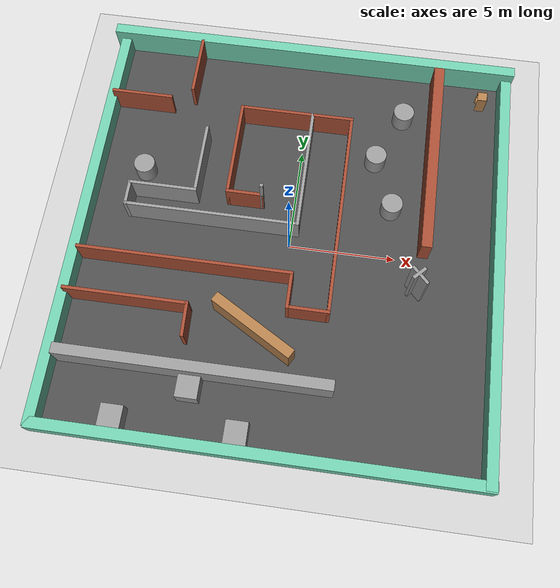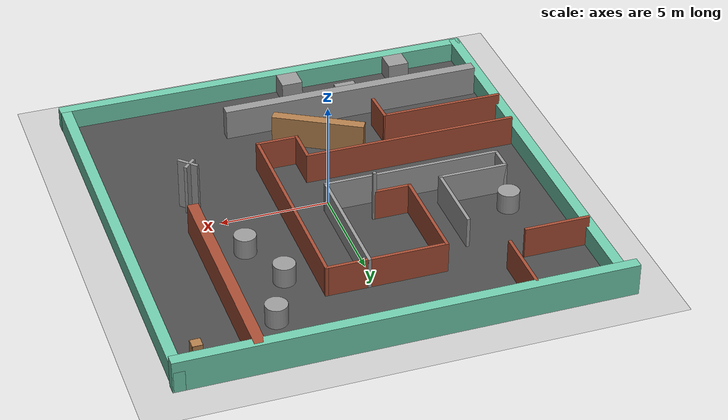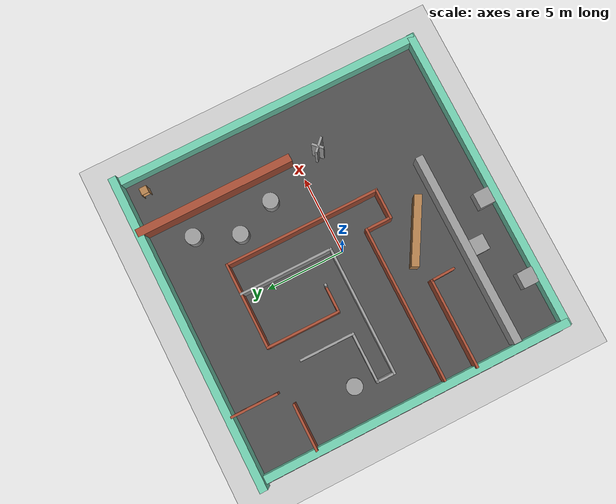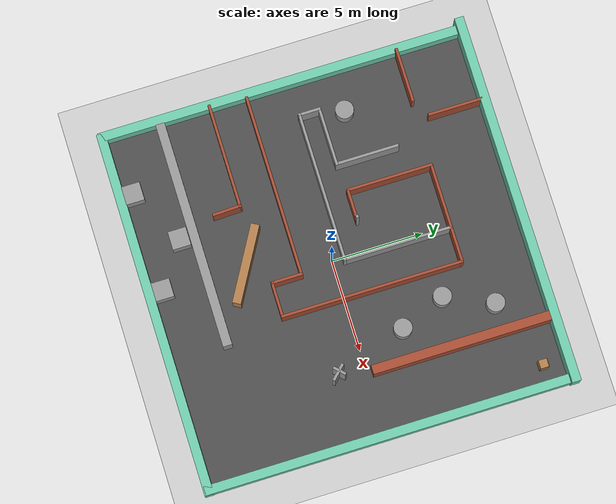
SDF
<sdf version="1.6">
 <world name="default">
  <light name="sun" type="directional">
   <pose>0 0 10 0 -0 0</pose>
   <diffuse>0.8 0.8 0.8 1</diffuse>
   <specular>0.1 0.1 0.1 1</specular>
   <attenuation>
    <range>1000</range>
    <constant>0.9</constant>
    <linear>0.01</linear>
    <quadratic>0.001</quadratic>
   </attenuation>
   <direction>-0.5 0.5 -1</direction>
  </light>
  <model name="ground_plane">
   <static>1</static>
   <link name="link">
    <collision name="collision">
     <geometry><plane><normal>0 0 1</normal><size>100 100</size></plane></geometry>
     <surface><friction><ode><mu>100</mu><mu2>50</mu2></ode></friction></surface>
    </collision>
    <visual name="visual">
     <cast_shadows>0</cast_shadows>
     <geometry><plane><normal>0 0 1</normal><size>100 100</size></plane></geometry>
     <material>
      <script><uri>file://media/materials/scripts/gazebo.material</uri><name>Gazebo/Grey</name></script>
     </material>
    </visual>
   </link>
  </model>
  <gravity>0 0 -9.8</gravity>
  <magnetic_field>6e-06 2.3e-05 -4.2e-05</magnetic_field>
  <atmosphere type="adiabatic"/>
  <physics name="default_physics" default="0" type="ode">
   <max_step_size>0.001</max_step_size>
   <real_time_factor>1</real_time_factor>
   <real_time_update_rate>1000</real_time_update_rate>
  </physics>
  <scene><ambient>0.4 0.4 0.4 1</ambient><background>0.7 0.7 0.7 1</background><shadows>1</shadows></scene>
  <spherical_coordinates>
   <surface_model>EARTH_WGS84</surface_model>
   <latitude_deg>0</latitude_deg>
   <longitude_deg>0</longitude_deg>
   <elevation>0</elevation>
   <heading_deg>0</heading_deg>
  </spherical_coordinates>
  <model name="practice.world">
   <pose>-0.153381 0.253657 0 0 -0 0</pose>
   <link name="Wall_0">
    <collision name="Wall_0_Collision">
     <geometry><box><size>20 0.5 1</size></box></geometry>
     <pose>0 0 0.5 0 -0 0</pose>
    </collision>
    <visual name="Wall_0_Visual">
     <pose>0 0 0.5 0 -0 0</pose>
     <geometry><box><size>20 0.5 1</size></box></geometry>
     <material>
      <script><uri>file://media/materials/scripts/gazebo.material</uri><name>Gazebo/Grey</name></script>
      <ambient>0.435294 0.796078 0.67451 1</ambient>
     </material>
    </visual>
    <pose>0.141188 -9.99913 0 0 -0 3.14159</pose>
   </link>
   <link name="Wall_11">
    <collision name="Wall_11_Collision">
     <geometry><box><size>3 0.15 1.5</size></box></geometry>
     <pose>0 0 0.75 0 -0 0</pose>
    </collision>
    <visual name="Wall_11_Visual">
     <pose>0 0 0.75 0 -0 0</pose>
     <geometry><box><size>3 0.15 1.5</size></box></geometry>
     <material>
      <script><uri>file://media/materials/scripts/gazebo.material</uri><name>Gazebo/Bricks</name></script>
      <ambient>1 1 1 1</ambient>
     </material>
    </visual>
    <pose>-8.0535 6.31307 0 0 -0 0</pose>
   </link>
   <link name="Wall_2">
    <collision name="Wall_2_Collision">
     <geometry><box><size>20.4281 0.5 1</size></box></geometry>
     <pose>0 0 0.5 0 -0 0</pose>
    </collision>
    <visual name="Wall_2_Visual">
     <pose>0 0 0.5 0 -0 0</pose>
     <geometry><box><size>20.4281 0.5 1</size></box></geometry>
     <material>
      <script><uri>file://media/materials/scripts/gazebo.material</uri><name>Gazebo/Grey</name></script>
      <ambient>0.435294 0.796078 0.67451 1</ambient>
     </material>
    </visual>
    <pose>9.8715 0.035083 0 0 -0 1.5708</pose>
   </link>
   <link name="Wall_5">
    <collision name="Wall_5_Collision">
     <geometry><box><size>20.35 0.5 1</size></box></geometry>
     <pose>0 0 0.5 0 -0 0</pose>
    </collision>
    <visual name="Wall_5_Visual">
     <pose>0 0 0.5 0 -0 0</pose>
     <geometry><box><size>20.35 0.5 1</size></box></geometry>
     <material>
      <script><uri>file://media/materials/scripts/gazebo.material</uri><name>Gazebo/Grey</name></script>
      <ambient>0.435294 0.796078 0.67451 1</ambient>
     </material>
    </visual>
    <pose>-9.6685 -0.002927 0 0 -0 1.5708</pose>
   </link>
   <link name="Wall_7">
    <collision name="Wall_7_Collision">
     <geometry><box><size>20.35 0.5 1.5</size></box></geometry>
     <pose>0 0 0.75 0 -0 0</pose>
    </collision>
    <visual name="Wall_7_Visual">
     <pose>0 0 0.75 0 -0 0</pose>
     <geometry><box><size>20.35 0.5 1.5</size></box></geometry>
     <material>
      <script><uri>file://media/materials/scripts/gazebo.material</uri><name>Gazebo/Grey</name></script>
      <ambient>0.435294 0.796078 0.67451 1</ambient>
     </material>
    </visual>
    <pose>0 9.99909 0 0 -0 3.14159</pose>
   </link>
   <link name="Wall_9">
    <collision name="Wall_9_Collision">
     <geometry><box><size>3 0.15 1.5</size></box></geometry>
     <pose>0 0 0.75 0 -0 0</pose>
    </collision>
    <visual name="Wall_9_Visual">
     <pose>0 0 0.75 0 -0 0</pose>
     <geometry><box><size>3 0.15 1.5</size></box></geometry>
     <material>
      <script><uri>file://media/materials/scripts/gazebo.material</uri><name>Gazebo/Bricks</name></script>
      <ambient>1 1 1 1</ambient>
     </material>
    </visual>
    <pose>-5.62308 8.36069 0 0 -0 1.5708</pose>
   </link>
   <static>1</static>
  </model>
  <model name="jersey_barrier_0">
   <link name="link_0">
    <pose>5.33545 0.98242 0.5 0 -0 0</pose>
    <inertial>
     <mass>1</mass>
     <inertia><ixx>0.145833</ixx><ixy>0</ixy><ixz>0</ixz><iyy>0.145833</iyy><iyz>0</iyz><izz>0.125</izz></inertia>
    </inertial>
    <visual name="visual">
     <geometry><cylinder><radius>0.5</radius><length>1</length></cylinder></geometry>
     <material>
      <lighting>1</lighting>
      <script><uri>file://media/materials/scripts/gazebo.material</uri><name>Gazebo/Grey</name></script>
      <ambient>0.3 0.3 0.3 1</ambient>
      <diffuse>0.7 0.7 0.7 1</diffuse>
      <specular>0.01 0.01 0.01 1</specular>
      <emissive>0 0 0 1</emissive>
     </material>
    </visual>
    <collision name="collision">
     <geometry><cylinder><radius>0.5</radius><length>1</length></cylinder></geometry>
     <surface>
      <friction>
       <ode><mu>1</mu><mu2>1</mu2><fdir1>0 0 0</fdir1><slip1>0</slip1><slip2>0</slip2></ode>
       <torsional>
        <coefficient>1</coefficient>
        <patch_radius>0</patch_radius>
        <surface_radius>0</surface_radius>
        <use_patch_radius>1</use_patch_radius>
        <ode><slip>0</slip></ode>
       </torsional>
      </friction>
      <bounce><restitution_coefficient>0</restitution_coefficient><threshold>1e+06</threshold></bounce>
      <contact>
       <collide_without_contact>0</collide_without_contact>
       <collide_without_contact_bitmask>1</collide_without_contact_bitmask>
       <collide_bitmask>1</collide_bitmask>
       <ode>
        <soft_cfm>0</soft_cfm>
        <soft_erp>0.2</soft_erp>
        <kp>1e+13</kp>
        <kd>1</kd>
        <max_vel>0.01</max_vel>
        <min_depth>0</min_depth>
       </ode>
       <bullet>
        <split_impulse>1</split_impulse>
        <split_impulse_penetration_threshold>-0.01</split_impulse_penetration_threshold>
        <soft_cfm>0</soft_cfm>
        <soft_erp>0.2</soft_erp>
        <kp>1e+13</kp>
        <kd>1</kd>
       </bullet>
      </contact>
     </surface>
    </collision>
   </link>
   <static>1</static>
   <pose>-12.7853 2.01758 0 0 -0 0</pose>
  </model>
  <model name="Untitled">
   <pose>-3.323 -6.581 0 0 -0 0</pose>
   <link name="Wall_0">
    <collision name="Wall_0_Collision">
     <geometry><box><size>12.3501 0.5 1.5</size></box></geometry>
     <pose>0 0 0.75 0 -0 0</pose>
    </collision>
    <visual name="Wall_0_Visual">
     <pose>0 0 0.75 0 -0 0</pose>
     <geometry><box><size>12.3501 0.5 1.5</size></box></geometry>
     <material>
      <script><uri>file://media/materials/scripts/gazebo.material</uri><name>Gazebo/Grey</name></script>
      <ambient>1 1 1 1</ambient>
     </material>
    </visual>
    <pose>0 0 0 0 -0 3.14159</pose>
   </link>
   <static>1</static>
  </model>
  <model name="unit_box_0">
   <pose>-6.43541 -9.02069 0.5 0 -0 0</pose>
   <link name="link">
    <inertial>
     <mass>1</mass>
     <inertia>
      <ixx>0.166667</ixx>
      <ixy>0</ixy>
      <ixz>0</ixz>
      <iyy>0.166667</iyy>
      <iyz>0</iyz>
      <izz>0.166667</izz>
     </inertia>
    </inertial>
    <collision name="collision"><geometry><box><size>1 1 1</size></box></geometry></collision>
    <visual name="visual">
     <geometry><box><size>1 1 1</size></box></geometry>
     <material>
      <script><name>Gazebo/Grey</name><uri>file://media/materials/scripts/gazebo.material</uri></script>
     </material>
    </visual>
   </link>
  </model>
  <model name="unit_box_1">
   <pose>-3.40738 -7.36701 0.5 0 -0 0</pose>
   <link name="link">
    <inertial>
     <mass>1</mass>
     <inertia>
      <ixx>0.166667</ixx>
      <ixy>0</ixy>
      <ixz>0</ixz>
      <iyy>0.166667</iyy>
      <iyz>0</iyz>
      <izz>0.166667</izz>
     </inertia>
    </inertial>
    <collision name="collision"><geometry><box><size>1 1 1</size></box></geometry></collision>
    <visual name="visual">
     <geometry><box><size>1 1 1</size></box></geometry>
     <material>
      <script><name>Gazebo/Grey</name><uri>file://media/materials/scripts/gazebo.material</uri></script>
     </material>
    </visual>
   </link>
  </model>
  <model name="unit_box_2">
   <pose>-1.04488 -8.99604 0.5 0 -0 0</pose>
   <link name="link">
    <inertial>
     <mass>1</mass>
     <inertia>
      <ixx>0.166667</ixx>
      <ixy>0</ixy>
      <ixz>0</ixz>
      <iyy>0.166667</iyy>
      <iyz>0</iyz>
      <izz>0.166667</izz>
     </inertia>
    </inertial>
    <collision name="collision"><geometry><box><size>1 1 1</size></box></geometry></collision>
    <visual name="visual">
     <geometry><box><size>1 1 1</size></box></geometry>
     <material>
      <script><name>Gazebo/Grey</name><uri>file://media/materials/scripts/gazebo.material</uri></script>
     </material>
    </visual>
   </link>
  </model>
  <model name="Untitled_0">
   <pose>-1.584 2.50649 0 0 -0 0</pose>
   <link name="Wall_10">
    <collision name="Wall_10_Collision">
     <geometry><box><size>10 0.15 1.5</size></box></geometry>
     <pose>0 0 0.75 0 -0 0</pose>
    </collision>
    <visual name="Wall_10_Visual">
     <pose>0 0 0.75 0 -0 0</pose>
     <geometry><box><size>10 0.15 1.5</size></box></geometry>
     <material>
      <script><uri>file://media/materials/scripts/gazebo.material</uri><name>Gazebo/Bricks</name></script>
      <ambient>1 1 1 1</ambient>
     </material>
    </visual>
    <pose>3.806 -0.97649 0 0 -0 1.5708</pose>
   </link>
   <link name="Wall_11">
    <collision name="Wall_11_Collision">
     <geometry><box><size>5.54 0.15 1.5</size></box></geometry>
     <pose>0 0 0.75 0 -0 0</pose>
    </collision>
    <visual name="Wall_11_Visual">
     <pose>0 0 0.75 0 -0 0</pose>
     <geometry><box><size>5.54 0.15 1.5</size></box></geometry>
     <material>
      <script><uri>file://media/materials/scripts/gazebo.material</uri><name>Gazebo/Bricks</name></script>
      <ambient>1 1 1 1</ambient>
     </material>
    </visual>
    <pose>1.111 3.94851 0 0 -0 3.14159</pose>
   </link>
   <link name="Wall_12">
    <collision name="Wall_12_Collision">
     <geometry><box><size>4.75 0.15 1.5</size></box></geometry>
     <pose>0 0 0.75 0 -0 0</pose>
    </collision>
    <visual name="Wall_12_Visual">
     <pose>0 0 0.75 0 -0 0</pose>
     <geometry><box><size>4.75 0.15 1.5</size></box></geometry>
     <material>
      <script><uri>file://media/materials/scripts/gazebo.material</uri><name>Gazebo/Bricks</name></script>
      <ambient>1 1 1 1</ambient>
     </material>
    </visual>
    <pose>-1.584 1.64851 0 0 0 -1.5708</pose>
   </link>
   <link name="Wall_13">
    <collision name="Wall_13_Collision">
     <geometry><box><size>1.7902 0.15 1.5</size></box></geometry>
     <pose>0 0 0.75 0 -0 0</pose>
    </collision>
    <visual name="Wall_13_Visual">
     <pose>0 0 0.75 0 -0 0</pose>
     <geometry><box><size>1.7902 0.15 1.5</size></box></geometry>
     <material>
      <script><uri>file://media/materials/scripts/gazebo.material</uri><name>Gazebo/Bricks</name></script>
      <ambient>1 1 1 1</ambient>
     </material>
    </visual>
    <pose>-0.764 -0.65149 0 0 -0 0</pose>
   </link>
   <link name="Wall_14">
    <collision name="Wall_14_Collision">
     <geometry><box><size>0.16 0.15 2.5</size></box></geometry>
     <pose>0 0 1.25 0 -0 0</pose>
    </collision>
    <visual name="Wall_14_Visual">
     <pose>0 0 1.25 0 -0 0</pose>
     <geometry><box><size>0.16 0.15 2.5</size></box></geometry>
     <material>
      <script><uri>file://media/materials/scripts/gazebo.material</uri><name>Gazebo/Grey</name></script>
      <ambient>1 1 1 1</ambient>
     </material>
    </visual>
    <pose>0.0611 -0.65129 0 0 -0 0.039339</pose>
   </link>
   <link name="Wall_16">
    <collision name="Wall_16_Collision">
     <geometry><box><size>6 0.15 1.5</size></box></geometry>
     <pose>0 0 0.75 0 -0 0</pose>
    </collision>
    <visual name="Wall_16_Visual">
     <pose>0 0 0.75 0 -0 0</pose>
     <geometry><box><size>6 0.15 1.5</size></box></geometry>
     <material>
      <script><uri>file://media/materials/scripts/gazebo.material</uri><name>Gazebo/Grey</name></script>
      <ambient>1 1 1 1</ambient>
     </material>
    </visual>
    <pose>1.896 1.02651 0 0 0 -1.5708</pose>
   </link>
   <link name="Wall_17">
    <collision name="Wall_17_Collision">
     <geometry><box><size>8.25 0.15 1.5</size></box></geometry>
     <pose>0 0 0.75 0 -0 0</pose>
    </collision>
    <visual name="Wall_17_Visual">
     <pose>0 0 0.75 0 -0 0</pose>
     <geometry><box><size>8.25 0.15 1.5</size></box></geometry>
     <material>
      <script><uri>file://media/materials/scripts/gazebo.material</uri><name>Gazebo/Grey</name></script>
      <ambient>1 1 1 1</ambient>
     </material>
    </visual>
    <pose>-2.154 -1.89849 0 0 -0 3.14159</pose>
   </link>
   <link name="Wall_18">
    <collision name="Wall_18_Collision">
     <geometry><box><size>1.25 0.15 1.5</size></box></geometry>
     <pose>0 0 0.75 0 -0 0</pose>
    </collision>
    <visual name="Wall_18_Visual">
     <pose>0 0 0.75 0 -0 0</pose>
     <geometry><box><size>1.25 0.15 1.5</size></box></geometry>
     <material>
      <script><uri>file://media/materials/scripts/gazebo.material</uri><name>Gazebo/Grey</name></script>
      <ambient>1 1 1 1</ambient>
     </material>
    </visual>
    <pose>-6.204 -1.34849 0 0 -0 1.5708</pose>
   </link>
   <link name="Wall_19">
    <collision name="Wall_19_Collision">
     <geometry><box><size>3.25 0.15 1.5</size></box></geometry>
     <pose>0 0 0.75 0 -0 0</pose>
    </collision>
    <visual name="Wall_19_Visual">
     <pose>0 0 0.75 0 -0 0</pose>
     <geometry><box><size>3.25 0.15 1.5</size></box></geometry>
     <material>
      <script><uri>file://media/materials/scripts/gazebo.material</uri><name>Gazebo/Grey</name></script>
      <ambient>1 1 1 1</ambient>
     </material>
    </visual>
    <pose>-4.654 -0.798491 0 0 -0 0</pose>
   </link>
   <link name="Wall_2">
    <collision name="Wall_2_Collision">
     <geometry><box><size>10.1003 0.5 1.5</size></box></geometry>
     <pose>0 0 0.75 0 -0 0</pose>
    </collision>
    <visual name="Wall_2_Visual">
     <pose>0 0 0.75 0 -0 0</pose>
     <geometry><box><size>10.1003 0.5 1.5</size></box></geometry>
     <material>
      <script><uri>file://media/materials/scripts/gazebo.material</uri><name>Gazebo/Bricks</name></script>
      <ambient>1 1 1 1</ambient>
     </material>
    </visual>
    <pose>7.881 2.79651 0 0 -0 1.5708</pose>
   </link>
   <link name="Wall_20">
    <collision name="Wall_20_Collision">
     <geometry><box><size>3.5 0.15 1.5</size></box></geometry>
     <pose>0 0 0.75 0 -0 0</pose>
    </collision>
    <visual name="Wall_20_Visual">
     <pose>0 0 0.75 0 -0 0</pose>
     <geometry><box><size>3.5 0.15 1.5</size></box></geometry>
     <material>
      <script><uri>file://media/materials/scripts/gazebo.material</uri><name>Gazebo/Grey</name></script>
      <ambient>1 1 1 1</ambient>
     </material>
    </visual>
    <pose>-3.104 0.876509 0 0 -0 1.5708</pose>
   </link>
   <link name="Wall_4">
    <collision name="Wall_4_Collision">
     <geometry><box><size>5.75 0.15 1.5</size></box></geometry>
     <pose>0 0 0.75 0 -0 0</pose>
    </collision>
    <visual name="Wall_4_Visual">
     <pose>0 0 0.75 0 -0 0</pose>
     <geometry><box><size>5.75 0.15 1.5</size></box></geometry>
     <material>
      <script><uri>file://media/materials/scripts/gazebo.material</uri><name>Gazebo/Bricks</name></script>
      <ambient>1 1 1 1</ambient>
     </material>
    </visual>
    <pose>-5.256 -6.32349 0 0 -0 0</pose>
   </link>
   <link name="Wall_5">
    <collision name="Wall_5_Collision">
     <geometry><box><size>1.59623 0.15 1.5</size></box></geometry>
     <pose>0 0 0.75 0 -0 0</pose>
    </collision>
    <visual name="Wall_5_Visual">
     <pose>0 0 0.75 0 -0 0</pose>
     <geometry><box><size>1.59623 0.15 1.5</size></box></geometry>
     <material>
      <script><uri>file://media/materials/scripts/gazebo.material</uri><name>Gazebo/Bricks</name></script>
      <ambient>1 1 1 1</ambient>
     </material>
    </visual>
    <pose>-2.432 -7.04649 0 0 0 -1.53761</pose>
   </link>
   <link name="Wall_7">
    <collision name="Wall_7_Collision">
     <geometry><box><size>10 0.15 1.5</size></box></geometry>
     <pose>0 0 0.75 0 -0 0</pose>
    </collision>
    <visual name="Wall_7_Visual">
     <pose>0 0 0.75 0 -0 0</pose>
     <geometry><box><size>10 0.15 1.5</size></box></geometry>
     <material>
      <script><uri>file://media/materials/scripts/gazebo.material</uri><name>Gazebo/Bricks</name></script>
      <ambient>1 1 1 1</ambient>
     </material>
    </visual>
    <pose>-2.969 -4.30149 0 0 -0 0</pose>
   </link>
   <link name="Wall_8">
    <collision name="Wall_8_Collision">
     <geometry><box><size>1.75 0.15 1.5</size></box></geometry>
     <pose>0 0 0.75 0 -0 0</pose>
    </collision>
    <visual name="Wall_8_Visual">
     <pose>0 0 0.75 0 -0 0</pose>
     <geometry><box><size>1.75 0.15 1.5</size></box></geometry>
     <material>
      <script><uri>file://media/materials/scripts/gazebo.material</uri><name>Gazebo/Bricks</name></script>
      <ambient>1 1 1 1</ambient>
     </material>
    </visual>
    <pose>1.956 -5.10149 0 0 0 -1.5708</pose>
   </link>
   <link name="Wall_9">
    <collision name="Wall_9_Collision">
     <geometry><box><size>2 0.15 1.5</size></box></geometry>
     <pose>0 0 0.75 0 -0 0</pose>
    </collision>
    <visual name="Wall_9_Visual">
     <pose>0 0 0.75 0 -0 0</pose>
     <geometry><box><size>2 0.15 1.5</size></box></geometry>
     <material>
      <script><uri>file://media/materials/scripts/gazebo.material</uri><name>Gazebo/Bricks</name></script>
      <ambient>1 1 1 1</ambient>
     </material>
    </visual>
    <pose>2.881 -5.90149 0 0 -0 0</pose>
   </link>
   <static>1</static>
  </model>
  <model name="asphalt_plane">
   <static>1</static>
   <link name="link">
    <collision name="collision"><geometry><box><size>20 20 0.1</size></box></geometry></collision>
    <visual name="visual">
     <cast_shadows>0</cast_shadows>
     <geometry><box><size>20 20 0.1</size></box></geometry>
     <material>
      <script>
       <uri>model://asphalt_plane/materials/scripts</uri>
       <uri>model://asphalt_plane/materials/textures</uri>
       <name>vrc/asphalt</name>
      </script>
     </material>
    </visual>
   </link>
   <pose>-0.197907 0.422378 0 0 -0 0</pose>
  </model>
  <model name="cabinet">
   <static>1</static>
   <link name="cabinet_bottom_plate">
    <inertial>
     <pose>0 0 -1 0 -0 0</pose>
     <inertia><ixx>2.05</ixx><ixy>0</ixy><ixz>0</ixz><iyy>2.05</iyy><iyz>0</iyz><izz>2.05</izz></inertia>
     <mass>25</mass>
    </inertial>
    <collision name="cabinet_bottom_plate_geom">
     <pose>0 0 0.01 0 -0 0</pose>
     <geometry><box><size>0.45 0.45 0.02</size></box></geometry>
    </collision>
    <visual name="cabinet_bottom_plate_geom_visual">
     <pose>0 0 0.01 0 -0 0</pose>
     <geometry><box><size>0.45 0.45 0.02</size></box></geometry>
     <material>
      <script><uri>file://media/materials/scripts/gazebo.material</uri><name>Gazebo/Wood</name></script>
     </material>
    </visual>
    <collision name="cabinet_bottom_plate_geom_cabinet_back_plate">
     <pose>0.235 0 0.51 0 -0 0</pose>
     <geometry><box><size>0.02 0.45 1.02</size></box></geometry>
    </collision>
    <visual name="cabinet_bottom_plate_geom_cabinet_back_plate_visual">
     <pose>0.235 0 0.51 0 -0 0</pose>
     <geometry><box><size>0.02 0.45 1.02</size></box></geometry>
     <material>
      <script><uri>file://media/materials/scripts/gazebo.material</uri><name>Gazebo/Wood</name></script>
     </material>
    </visual>
    <collision name="cabinet_bottom_plate_geom_cabinet_left_plate">
     <pose>0 0.235 0.51 0 -0 0</pose>
     <geometry><box><size>0.45 0.02 1.02</size></box></geometry>
    </collision>
    <visual name="cabinet_bottom_plate_geom_cabinet_left_plate_visual">
     <pose>0 0.235 0.51 0 -0 0</pose>
     <geometry><box><size>0.45 0.02 1.02</size></box></geometry>
     <material>
      <script><uri>file://media/materials/scripts/gazebo.material</uri><name>Gazebo/Wood</name></script>
     </material>
    </visual>
    <collision name="cabinet_bottom_plate_geom_cabinet_middle_plate">
     <pose>0 0 0.51 0 -0 0</pose>
     <geometry><box><size>0.45 0.45 0.02</size></box></geometry>
    </collision>
    <visual name="cabinet_bottom_plate_geom_cabinet_middle_plate_visual">
     <pose>0 0 0.51 0 -0 0</pose>
     <geometry><box><size>0.45 0.45 0.02</size></box></geometry>
     <material>
      <script><uri>file://media/materials/scripts/gazebo.material</uri><name>Gazebo/Wood</name></script>
     </material>
    </visual>
    <collision name="cabinet_bottom_plate_geom_cabinet_right_plate">
     <pose>0 -0.235 0.51 0 -0 0</pose>
     <geometry><box><size>0.45 0.02 1.02</size></box></geometry>
    </collision>
    <visual name="cabinet_bottom_plate_geom_cabinet_right_plate_visual">
     <pose>0 -0.235 0.51 0 -0 0</pose>
     <geometry><box><size>0.45 0.02 1.02</size></box></geometry>
     <material>
      <script><uri>file://media/materials/scripts/gazebo.material</uri><name>Gazebo/Wood</name></script>
     </material>
    </visual>
    <collision name="cabinet_bottom_plate_geom_cabinet_top_plate">
     <pose>0 0 1.01 0 -0 0</pose>
     <geometry><box><size>0.45 0.45 0.02</size></box></geometry>
    </collision>
    <visual name="cabinet_bottom_plate_geom_cabinet_top_plate_visual">
     <pose>0 0 1.01 0 -0 0</pose>
     <geometry><box><size>0.45 0.45 0.02</size></box></geometry>
     <material>
      <script><uri>file://media/materials/scripts/gazebo.material</uri><name>Gazebo/Wood</name></script>
     </material>
    </visual>
   </link>
   <pose>8.57749 8.93536 0 0 -0 0</pose>
  </model>
  <model name="unit_cylinder_0">
   <pose>4.59736 2.47444 0.5 0 -0 0</pose>
   <link name="link">
    <inertial>
     <mass>1</mass>
     <inertia><ixx>0.145833</ixx><ixy>0</ixy><ixz>0</ixz><iyy>0.145833</iyy><iyz>0</iyz><izz>0.125</izz></inertia>
    </inertial>
    <collision name="collision">
     <geometry><cylinder><radius>0.5</radius><length>1</length></cylinder></geometry>
    </collision>
    <visual name="visual">
     <geometry><cylinder><radius>0.5</radius><length>1</length></cylinder></geometry>
     <material>
      <script><name>Gazebo/Grey</name><uri>file://media/materials/scripts/gazebo.material</uri></script>
     </material>
    </visual>
   </link>
  </model>
  <model name="unit_cylinder_1">
   <pose>3.60884 4.95451 0.5 0 -0 0</pose>
   <link name="link">
    <inertial>
     <mass>1</mass>
     <inertia><ixx>0.145833</ixx><ixy>0</ixy><ixz>0</ixz><iyy>0.145833</iyy><iyz>0</iyz><izz>0.125</izz></inertia>
    </inertial>
    <collision name="collision">
     <geometry><cylinder><radius>0.5</radius><length>1</length></cylinder></geometry>
    </collision>
    <visual name="visual">
     <geometry><cylinder><radius>0.5</radius><length>1</length></cylinder></geometry>
     <material>
      <script><name>Gazebo/Grey</name><uri>file://media/materials/scripts/gazebo.material</uri></script>
     </material>
    </visual>
   </link>
  </model>
  <model name="unit_cylinder_2">
   <pose>4.75894 7.53139 0.5 0 -0 0</pose>
   <link name="link">
    <inertial>
     <mass>1</mass>
     <inertia><ixx>0.145833</ixx><ixy>0</ixy><ixz>0</ixz><iyy>0.145833</iyy><iyz>0</iyz><izz>0.125</izz></inertia>
    </inertial>
    <collision name="collision">
     <geometry><cylinder><radius>0.5</radius><length>1</length></cylinder></geometry>
    </collision>
    <visual name="visual">
     <geometry><cylinder><radius>0.5</radius><length>1</length></cylinder></geometry>
     <material>
      <script><name>Gazebo/Grey</name><uri>file://media/materials/scripts/gazebo.material</uri></script>
     </material>
    </visual>
   </link>
  </model>
  <model name="Untitled_1">
   <pose>1.69535 -3.39467 0 0 -0 0</pose>
   <link name="Wall_22">
    <collision name="Wall_22_Collision">
     <geometry><box><size>4.31983 0.47 1.5</size></box></geometry>
     <pose>0 0 0.75 0 -0 0</pose>
    </collision>
    <visual name="Wall_22_Visual">
     <pose>0 0 0.75 0 -0 0</pose>
     <geometry><box><size>4.31983 0.47 1.5</size></box></geometry>
     <material>
      <script><uri>file://media/materials/scripts/gazebo.material</uri><name>Gazebo/Wood</name></script>
      <ambient>1 1 1 1</ambient>
     </material>
    </visual>
    <pose>-2.70435 -1.01583 0 0 0 -0.523624</pose>
   </link>
   <link name="Wall_25">
    <collision name="Wall_25_Collision">
     <geometry><box><size>1 0.15 2.5</size></box></geometry>
     <pose>0 0 1.25 0 -0 0</pose>
    </collision>
    <visual name="Wall_25_Visual">
     <pose>0 0 1.25 0 -0 0</pose>
     <geometry><box><size>1 0.15 2.5</size></box></geometry>
     <material>
      <script><uri>file://media/materials/scripts/gazebo.material</uri><name>Gazebo/Grey</name></script>
      <ambient>1 1 1 1</ambient>
     </material>
    </visual>
    <pose>4.28578 1.89276 0 0 0 -0.785398</pose>
   </link>
   <link name="Wall_27">
    <collision name="Wall_27_Collision">
     <geometry><box><size>0.75 0.15 2.5</size></box></geometry>
     <pose>0 0 1.25 0 -0 0</pose>
    </collision>
    <visual name="Wall_27_Visual">
     <pose>0 0 1.25 0 -0 0</pose>
     <geometry><box><size>0.75 0.15 2.5</size></box></geometry>
     <material>
      <script><uri>file://media/materials/scripts/gazebo.material</uri><name>Gazebo/Grey</name></script>
      <ambient>1 1 1 1</ambient>
     </material>
    </visual>
    <pose>4.24089 1.97739 0 0 -0 0.785398</pose>
   </link>
   <static>1</static>
  </model>
 </world>
</sdf>
